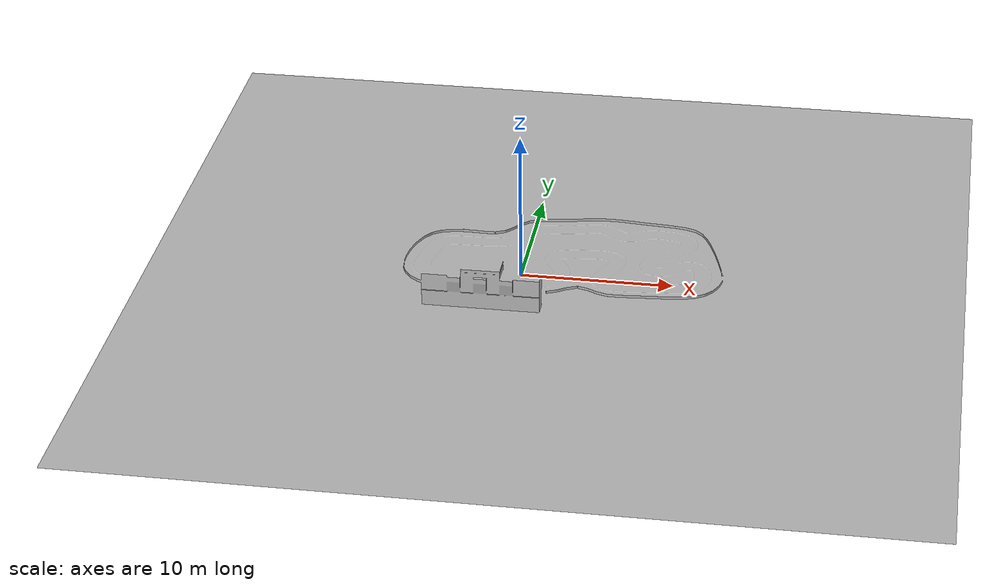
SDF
<?xml version="1.0"?>
<sdf version="1.4">
<world name="July_2020">
  <scene>
    <ambient>0.5 0.5 0.5 1.0</ambient>
    <shadows>0</shadows>
    <sky></sky>
  </scene>
  <include>
    <uri>model://sun</uri>
    <pose>0.0 0.0 15.0 0 0 0</pose>
    <cast_shadows>false</cast_shadows>
    <attenuation>
      <constant>0.5</constant>
      <linear>0.01</linear>
      <quadratic>0.0</quadratic>
      <range>100</range>
    </attenuation>
  </include>
  <light type="point" name="Light 1">
         <pose>0 0 15 0 0 0</pose>
         <diffuse>.225 .225 .225 1</diffuse>
         <specular>.1 .1 .1 1</specular>
         <attenuation>
                <constant>0.4</constant>
                <linear>0.01</linear>
                <quadratic>0.00</quadratic>
                <range>50</range>
         </attenuation>
         <direction>0 0 -1</direction>
         <cast_shadows>false</cast_shadows>
  </light>
  <include>
    <uri>model://models/July_2020</uri>
    <pose>0 0 0 0 0 0</pose>
    <name>racetrack</name>
  </include>
</world>
</sdf>

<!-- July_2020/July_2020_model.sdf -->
<sdf version="1.4">
<model name="July_2020_model">
<link name="track">
<collision name="collision">
<pose>0 0 0 0 0 0</pose>
<geometry>
<mesh>
<uri>model://meshes/July_2020/July_2020_collision.dae</uri>
</mesh>
</geometry>
</collision>
<visual name="visual">
<pose>0 0 0 0 0 0</pose>
<geometry>
<mesh>
<uri>model://meshes/July_2020/July_2020.dae</uri>
</mesh>
</geometry>
</visual>
</link>
<static>1</static>
</model>
</sdf>
